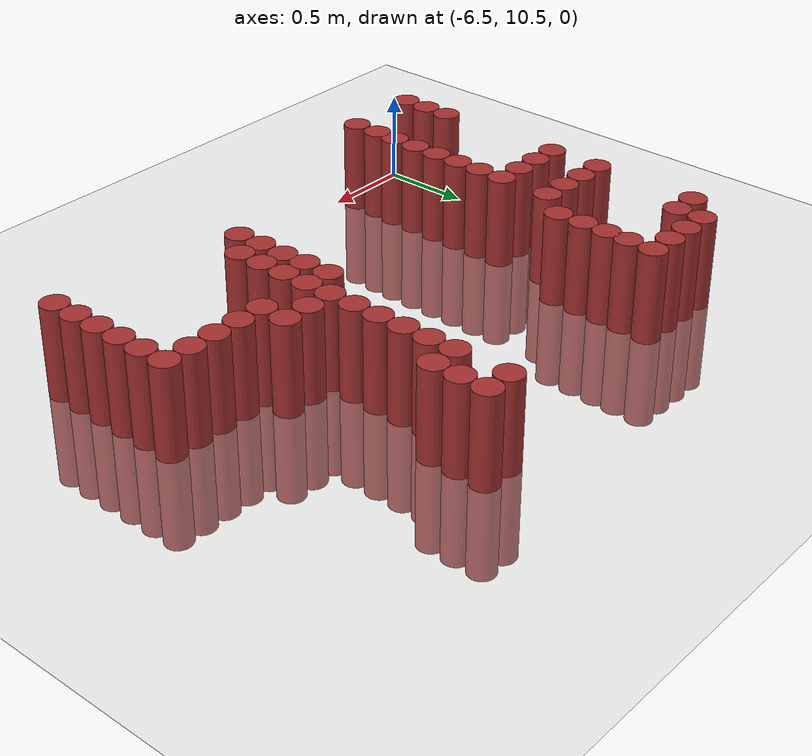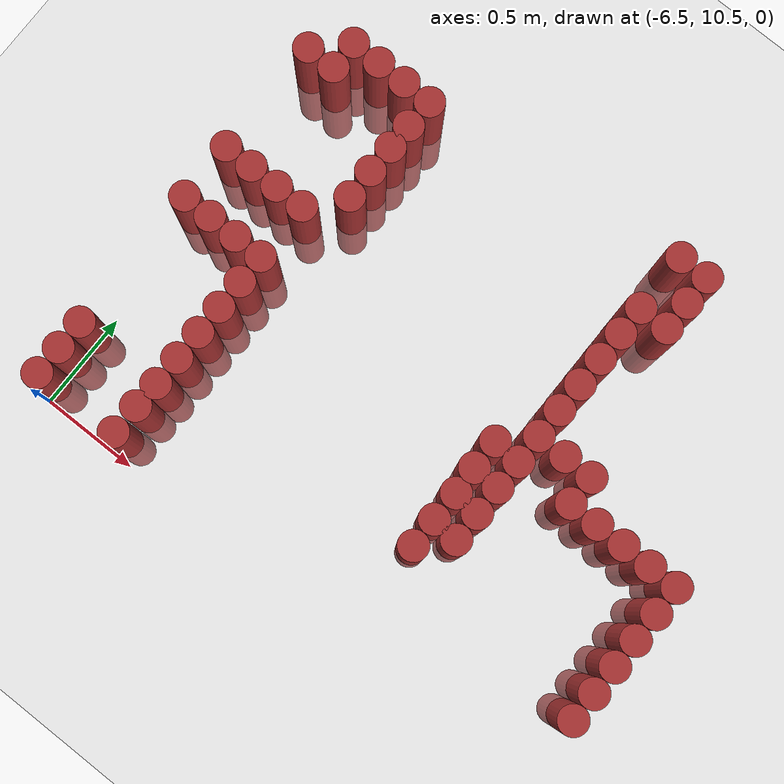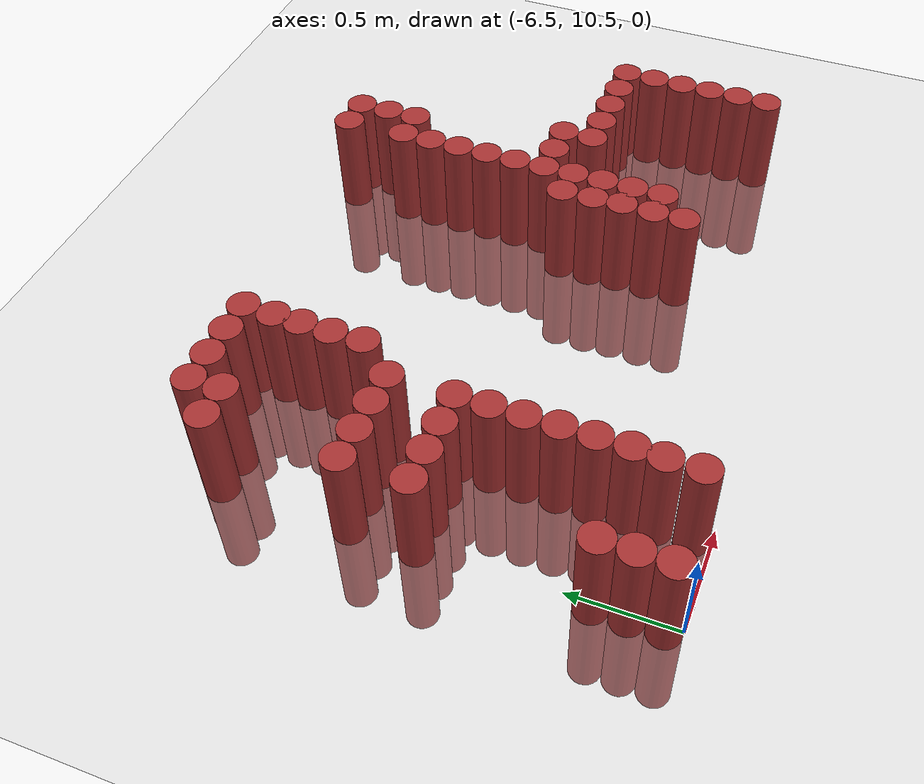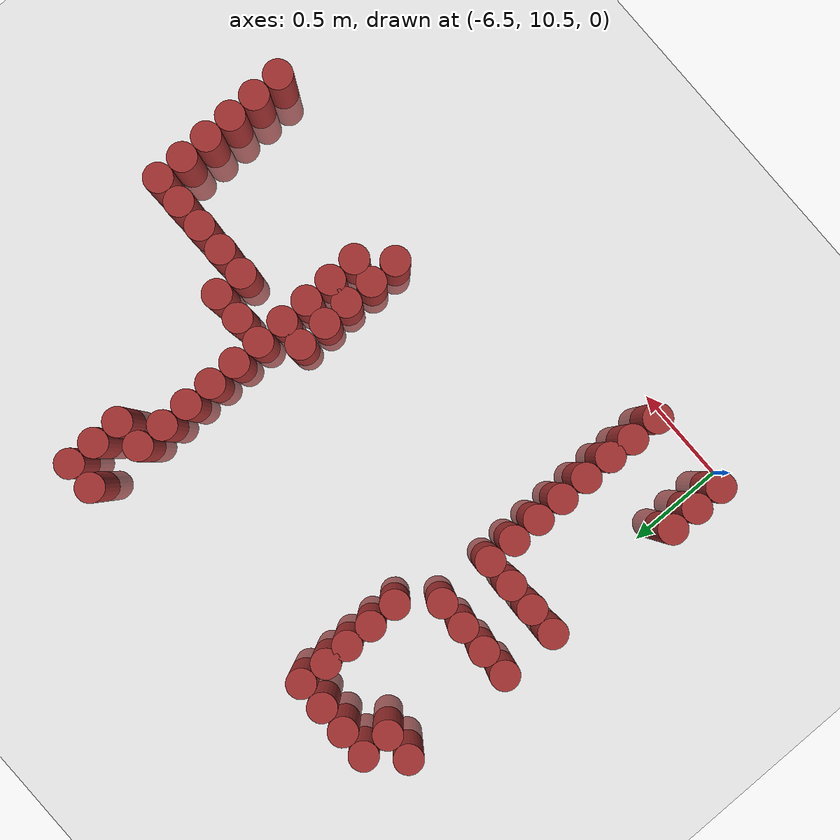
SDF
<sdf version="1.6">
 <world name="default">
  <model name="ground_plane">
   <static>1</static>
   <link name="link">
    <collision name="collision">
     <geometry><plane><normal>0 0 1</normal><size>100 100</size></plane></geometry>
     <surface><friction><ode><mu>100</mu><mu2>50</mu2></ode></friction></surface>
    </collision>
    <visual name="visual">
     <cast_shadows>0</cast_shadows>
     <geometry><plane><normal>0 0 1</normal><size>100 100</size></plane></geometry>
     <material>
      <script><uri>file://media/materials/scripts/gazebo.material</uri><name>Gazebo/Grey</name></script>
     </material>
    </visual>
   </link>
  </model>
  <model name="unit_cylinder_845">
   <static>1</static>
   <pose>-6.525 10.575 0 0 -0 0</pose>
   <link name="link">
    <inertial>
     <mass>1</mass>
     <inertia><ixx>0.145833</ixx><ixy>0</ixy><ixz>0</ixz><iyy>0.145833</iyy><iyz>0</iyz><izz>0.125</izz></inertia>
    </inertial>
    <collision name="collision">
     <geometry><cylinder><radius>0.075</radius><length>1</length></cylinder></geometry>
    </collision>
    <visual name="visual">
     <geometry><cylinder><radius>0.075</radius><length>1</length></cylinder></geometry>
     <material><ambient>0.648 0.192 0.192 1</ambient><diffuse>0.648 0.192 0.192 1</diffuse></material>
     <material>
      <script><name>Gazebo/Grey</name><uri>file://media/materials/scripts/gazebo.material</uri></script>
     </material>
    </visual>
   </link>
  </model>
  <model name="unit_cylinder_846">
   <static>1</static>
   <pose>-6.525 10.725 0 0 -0 0</pose>
   <link name="link">
    <inertial>
     <mass>1</mass>
     <inertia><ixx>0.145833</ixx><ixy>0</ixy><ixz>0</ixz><iyy>0.145833</iyy><iyz>0</iyz><izz>0.125</izz></inertia>
    </inertial>
    <collision name="collision">
     <geometry><cylinder><radius>0.075</radius><length>1</length></cylinder></geometry>
    </collision>
    <visual name="visual">
     <geometry><cylinder><radius>0.075</radius><length>1</length></cylinder></geometry>
     <material><ambient>0.648 0.192 0.192 1</ambient><diffuse>0.648 0.192 0.192 1</diffuse></material>
     <material>
      <script><name>Gazebo/Grey</name><uri>file://media/materials/scripts/gazebo.material</uri></script>
     </material>
    </visual>
   </link>
  </model>
  <model name="unit_cylinder_847">
   <static>1</static>
   <pose>-6.525 10.875 0 0 -0 0</pose>
   <link name="link">
    <inertial>
     <mass>1</mass>
     <inertia><ixx>0.145833</ixx><ixy>0</ixy><ixz>0</ixz><iyy>0.145833</iyy><iyz>0</iyz><izz>0.125</izz></inertia>
    </inertial>
    <collision name="collision">
     <geometry><cylinder><radius>0.075</radius><length>1</length></cylinder></geometry>
    </collision>
    <visual name="visual">
     <geometry><cylinder><radius>0.075</radius><length>1</length></cylinder></geometry>
     <material><ambient>0.648 0.192 0.192 1</ambient><diffuse>0.648 0.192 0.192 1</diffuse></material>
     <material>
      <script><name>Gazebo/Grey</name><uri>file://media/materials/scripts/gazebo.material</uri></script>
     </material>
    </visual>
   </link>
  </model>
  <model name="unit_cylinder_848">
   <static>1</static>
   <pose>-6.525 11.625 0 0 -0 0</pose>
   <link name="link">
    <inertial>
     <mass>1</mass>
     <inertia><ixx>0.145833</ixx><ixy>0</ixy><ixz>0</ixz><iyy>0.145833</iyy><iyz>0</iyz><izz>0.125</izz></inertia>
    </inertial>
    <collision name="collision">
     <geometry><cylinder><radius>0.075</radius><length>1</length></cylinder></geometry>
    </collision>
    <visual name="visual">
     <geometry><cylinder><radius>0.075</radius><length>1</length></cylinder></geometry>
     <material><ambient>0.648 0.192 0.192 1</ambient><diffuse>0.648 0.192 0.192 1</diffuse></material>
     <material>
      <script><name>Gazebo/Grey</name><uri>file://media/materials/scripts/gazebo.material</uri></script>
     </material>
    </visual>
   </link>
  </model>
  <model name="unit_cylinder_849">
   <static>1</static>
   <pose>-6.525 11.925 0 0 -0 0</pose>
   <link name="link">
    <inertial>
     <mass>1</mass>
     <inertia><ixx>0.145833</ixx><ixy>0</ixy><ixz>0</ixz><iyy>0.145833</iyy><iyz>0</iyz><izz>0.125</izz></inertia>
    </inertial>
    <collision name="collision">
     <geometry><cylinder><radius>0.075</radius><length>1</length></cylinder></geometry>
    </collision>
    <visual name="visual">
     <geometry><cylinder><radius>0.075</radius><length>1</length></cylinder></geometry>
     <material><ambient>0.648 0.192 0.192 1</ambient><diffuse>0.648 0.192 0.192 1</diffuse></material>
     <material>
      <script><name>Gazebo/Grey</name><uri>file://media/materials/scripts/gazebo.material</uri></script>
     </material>
    </visual>
   </link>
  </model>
  <model name="unit_cylinder_850">
   <static>1</static>
   <pose>-6.525 12.525 0 0 -0 0</pose>
   <link name="link">
    <inertial>
     <mass>1</mass>
     <inertia><ixx>0.145833</ixx><ixy>0</ixy><ixz>0</ixz><iyy>0.145833</iyy><iyz>0</iyz><izz>0.125</izz></inertia>
    </inertial>
    <collision name="collision">
     <geometry><cylinder><radius>0.075</radius><length>1</length></cylinder></geometry>
    </collision>
    <visual name="visual">
     <geometry><cylinder><radius>0.075</radius><length>1</length></cylinder></geometry>
     <material><ambient>0.648 0.192 0.192 1</ambient><diffuse>0.648 0.192 0.192 1</diffuse></material>
     <material>
      <script><name>Gazebo/Grey</name><uri>file://media/materials/scripts/gazebo.material</uri></script>
     </material>
    </visual>
   </link>
  </model>
  <model name="unit_cylinder_866">
   <static>1</static>
   <pose>-6.375 11.625 0 0 -0 0</pose>
   <link name="link">
    <inertial>
     <mass>1</mass>
     <inertia><ixx>0.145833</ixx><ixy>0</ixy><ixz>0</ixz><iyy>0.145833</iyy><iyz>0</iyz><izz>0.125</izz></inertia>
    </inertial>
    <collision name="collision">
     <geometry><cylinder><radius>0.075</radius><length>1</length></cylinder></geometry>
    </collision>
    <visual name="visual">
     <geometry><cylinder><radius>0.075</radius><length>1</length></cylinder></geometry>
     <material><ambient>0.648 0.192 0.192 1</ambient><diffuse>0.648 0.192 0.192 1</diffuse></material>
     <material>
      <script><name>Gazebo/Grey</name><uri>file://media/materials/scripts/gazebo.material</uri></script>
     </material>
    </visual>
   </link>
  </model>
  <model name="unit_cylinder_867">
   <static>1</static>
   <pose>-6.375 11.925 0 0 -0 0</pose>
   <link name="link">
    <inertial>
     <mass>1</mass>
     <inertia><ixx>0.145833</ixx><ixy>0</ixy><ixz>0</ixz><iyy>0.145833</iyy><iyz>0</iyz><izz>0.125</izz></inertia>
    </inertial>
    <collision name="collision">
     <geometry><cylinder><radius>0.075</radius><length>1</length></cylinder></geometry>
    </collision>
    <visual name="visual">
     <geometry><cylinder><radius>0.075</radius><length>1</length></cylinder></geometry>
     <material><ambient>0.648 0.192 0.192 1</ambient><diffuse>0.648 0.192 0.192 1</diffuse></material>
     <material>
      <script><name>Gazebo/Grey</name><uri>file://media/materials/scripts/gazebo.material</uri></script>
     </material>
    </visual>
   </link>
  </model>
  <model name="unit_cylinder_868">
   <static>1</static>
   <pose>-6.375 12.525 0 0 -0 0</pose>
   <link name="link">
    <inertial>
     <mass>1</mass>
     <inertia><ixx>0.145833</ixx><ixy>0</ixy><ixz>0</ixz><iyy>0.145833</iyy><iyz>0</iyz><izz>0.125</izz></inertia>
    </inertial>
    <collision name="collision">
     <geometry><cylinder><radius>0.075</radius><length>1</length></cylinder></geometry>
    </collision>
    <visual name="visual">
     <geometry><cylinder><radius>0.075</radius><length>1</length></cylinder></geometry>
     <material><ambient>0.648 0.192 0.192 1</ambient><diffuse>0.648 0.192 0.192 1</diffuse></material>
     <material>
      <script><name>Gazebo/Grey</name><uri>file://media/materials/scripts/gazebo.material</uri></script>
     </material>
    </visual>
   </link>
  </model>
  <model name="unit_cylinder_869">
   <static>1</static>
   <pose>-6.375 12.675 0 0 -0 0</pose>
   <link name="link">
    <inertial>
     <mass>1</mass>
     <inertia><ixx>0.145833</ixx><ixy>0</ixy><ixz>0</ixz><iyy>0.145833</iyy><iyz>0</iyz><izz>0.125</izz></inertia>
    </inertial>
    <collision name="collision">
     <geometry><cylinder><radius>0.075</radius><length>1</length></cylinder></geometry>
    </collision>
    <visual name="visual">
     <geometry><cylinder><radius>0.075</radius><length>1</length></cylinder></geometry>
     <material><ambient>0.648 0.192 0.192 1</ambient><diffuse>0.648 0.192 0.192 1</diffuse></material>
     <material>
      <script><name>Gazebo/Grey</name><uri>file://media/materials/scripts/gazebo.material</uri></script>
     </material>
    </visual>
   </link>
  </model>
  <model name="unit_cylinder_882">
   <static>1</static>
   <pose>-6.225 11.625 0 0 -0 0</pose>
   <link name="link">
    <inertial>
     <mass>1</mass>
     <inertia><ixx>0.145833</ixx><ixy>0</ixy><ixz>0</ixz><iyy>0.145833</iyy><iyz>0</iyz><izz>0.125</izz></inertia>
    </inertial>
    <collision name="collision">
     <geometry><cylinder><radius>0.075</radius><length>1</length></cylinder></geometry>
    </collision>
    <visual name="visual">
     <geometry><cylinder><radius>0.075</radius><length>1</length></cylinder></geometry>
     <material><ambient>0.648 0.192 0.192 1</ambient><diffuse>0.648 0.192 0.192 1</diffuse></material>
     <material>
      <script><name>Gazebo/Grey</name><uri>file://media/materials/scripts/gazebo.material</uri></script>
     </material>
    </visual>
   </link>
  </model>
  <model name="unit_cylinder_883">
   <static>1</static>
   <pose>-6.225 11.925 0 0 -0 0</pose>
   <link name="link">
    <inertial>
     <mass>1</mass>
     <inertia><ixx>0.145833</ixx><ixy>0</ixy><ixz>0</ixz><iyy>0.145833</iyy><iyz>0</iyz><izz>0.125</izz></inertia>
    </inertial>
    <collision name="collision">
     <geometry><cylinder><radius>0.075</radius><length>1</length></cylinder></geometry>
    </collision>
    <visual name="visual">
     <geometry><cylinder><radius>0.075</radius><length>1</length></cylinder></geometry>
     <material><ambient>0.648 0.192 0.192 1</ambient><diffuse>0.648 0.192 0.192 1</diffuse></material>
     <material>
      <script><name>Gazebo/Grey</name><uri>file://media/materials/scripts/gazebo.material</uri></script>
     </material>
    </visual>
   </link>
  </model>
  <model name="unit_cylinder_884">
   <static>1</static>
   <pose>-6.225 12.675 0 0 -0 0</pose>
   <link name="link">
    <inertial>
     <mass>1</mass>
     <inertia><ixx>0.145833</ixx><ixy>0</ixy><ixz>0</ixz><iyy>0.145833</iyy><iyz>0</iyz><izz>0.125</izz></inertia>
    </inertial>
    <collision name="collision">
     <geometry><cylinder><radius>0.075</radius><length>1</length></cylinder></geometry>
    </collision>
    <visual name="visual">
     <geometry><cylinder><radius>0.075</radius><length>1</length></cylinder></geometry>
     <material><ambient>0.648 0.192 0.192 1</ambient><diffuse>0.648 0.192 0.192 1</diffuse></material>
     <material>
      <script><name>Gazebo/Grey</name><uri>file://media/materials/scripts/gazebo.material</uri></script>
     </material>
    </visual>
   </link>
  </model>
  <model name="unit_cylinder_897">
   <static>1</static>
   <pose>-6.075 10.875 0 0 -0 0</pose>
   <link name="link">
    <inertial>
     <mass>1</mass>
     <inertia><ixx>0.145833</ixx><ixy>0</ixy><ixz>0</ixz><iyy>0.145833</iyy><iyz>0</iyz><izz>0.125</izz></inertia>
    </inertial>
    <collision name="collision">
     <geometry><cylinder><radius>0.075</radius><length>1</length></cylinder></geometry>
    </collision>
    <visual name="visual">
     <geometry><cylinder><radius>0.075</radius><length>1</length></cylinder></geometry>
     <material><ambient>0.648 0.192 0.192 1</ambient><diffuse>0.648 0.192 0.192 1</diffuse></material>
     <material>
      <script><name>Gazebo/Grey</name><uri>file://media/materials/scripts/gazebo.material</uri></script>
     </material>
    </visual>
   </link>
  </model>
  <model name="unit_cylinder_898">
   <static>1</static>
   <pose>-6.075 11.025 0 0 -0 0</pose>
   <link name="link">
    <inertial>
     <mass>1</mass>
     <inertia><ixx>0.145833</ixx><ixy>0</ixy><ixz>0</ixz><iyy>0.145833</iyy><iyz>0</iyz><izz>0.125</izz></inertia>
    </inertial>
    <collision name="collision">
     <geometry><cylinder><radius>0.075</radius><length>1</length></cylinder></geometry>
    </collision>
    <visual name="visual">
     <geometry><cylinder><radius>0.075</radius><length>1</length></cylinder></geometry>
     <material><ambient>0.648 0.192 0.192 1</ambient><diffuse>0.648 0.192 0.192 1</diffuse></material>
     <material>
      <script><name>Gazebo/Grey</name><uri>file://media/materials/scripts/gazebo.material</uri></script>
     </material>
    </visual>
   </link>
  </model>
  <model name="unit_cylinder_899">
   <static>1</static>
   <pose>-6.075 11.175 0 0 -0 0</pose>
   <link name="link">
    <inertial>
     <mass>1</mass>
     <inertia><ixx>0.145833</ixx><ixy>0</ixy><ixz>0</ixz><iyy>0.145833</iyy><iyz>0</iyz><izz>0.125</izz></inertia>
    </inertial>
    <collision name="collision">
     <geometry><cylinder><radius>0.075</radius><length>1</length></cylinder></geometry>
    </collision>
    <visual name="visual">
     <geometry><cylinder><radius>0.075</radius><length>1</length></cylinder></geometry>
     <material><ambient>0.648 0.192 0.192 1</ambient><diffuse>0.648 0.192 0.192 1</diffuse></material>
     <material>
      <script><name>Gazebo/Grey</name><uri>file://media/materials/scripts/gazebo.material</uri></script>
     </material>
    </visual>
   </link>
  </model>
  <model name="unit_cylinder_900">
   <static>1</static>
   <pose>-6.075 11.325 0 0 -0 0</pose>
   <link name="link">
    <inertial>
     <mass>1</mass>
     <inertia><ixx>0.145833</ixx><ixy>0</ixy><ixz>0</ixz><iyy>0.145833</iyy><iyz>0</iyz><izz>0.125</izz></inertia>
    </inertial>
    <collision name="collision">
     <geometry><cylinder><radius>0.075</radius><length>1</length></cylinder></geometry>
    </collision>
    <visual name="visual">
     <geometry><cylinder><radius>0.075</radius><length>1</length></cylinder></geometry>
     <material><ambient>0.648 0.192 0.192 1</ambient><diffuse>0.648 0.192 0.192 1</diffuse></material>
     <material>
      <script><name>Gazebo/Grey</name><uri>file://media/materials/scripts/gazebo.material</uri></script>
     </material>
    </visual>
   </link>
  </model>
  <model name="unit_cylinder_901">
   <static>1</static>
   <pose>-6.075 11.475 0 0 -0 0</pose>
   <link name="link">
    <inertial>
     <mass>1</mass>
     <inertia><ixx>0.145833</ixx><ixy>0</ixy><ixz>0</ixz><iyy>0.145833</iyy><iyz>0</iyz><izz>0.125</izz></inertia>
    </inertial>
    <collision name="collision">
     <geometry><cylinder><radius>0.075</radius><length>1</length></cylinder></geometry>
    </collision>
    <visual name="visual">
     <geometry><cylinder><radius>0.075</radius><length>1</length></cylinder></geometry>
     <material><ambient>0.648 0.192 0.192 1</ambient><diffuse>0.648 0.192 0.192 1</diffuse></material>
     <material>
      <script><name>Gazebo/Grey</name><uri>file://media/materials/scripts/gazebo.material</uri></script>
     </material>
    </visual>
   </link>
  </model>
  <model name="unit_cylinder_902">
   <static>1</static>
   <pose>-6.075 11.625 0 0 -0 0</pose>
   <link name="link">
    <inertial>
     <mass>1</mass>
     <inertia><ixx>0.145833</ixx><ixy>0</ixy><ixz>0</ixz><iyy>0.145833</iyy><iyz>0</iyz><izz>0.125</izz></inertia>
    </inertial>
    <collision name="collision">
     <geometry><cylinder><radius>0.075</radius><length>1</length></cylinder></geometry>
    </collision>
    <visual name="visual">
     <geometry><cylinder><radius>0.075</radius><length>1</length></cylinder></geometry>
     <material><ambient>0.648 0.192 0.192 1</ambient><diffuse>0.648 0.192 0.192 1</diffuse></material>
     <material>
      <script><name>Gazebo/Grey</name><uri>file://media/materials/scripts/gazebo.material</uri></script>
     </material>
    </visual>
   </link>
  </model>
  <model name="unit_cylinder_903">
   <static>1</static>
   <pose>-6.075 11.925 0 0 -0 0</pose>
   <link name="link">
    <inertial>
     <mass>1</mass>
     <inertia><ixx>0.145833</ixx><ixy>0</ixy><ixz>0</ixz><iyy>0.145833</iyy><iyz>0</iyz><izz>0.125</izz></inertia>
    </inertial>
    <collision name="collision">
     <geometry><cylinder><radius>0.075</radius><length>1</length></cylinder></geometry>
    </collision>
    <visual name="visual">
     <geometry><cylinder><radius>0.075</radius><length>1</length></cylinder></geometry>
     <material><ambient>0.648 0.192 0.192 1</ambient><diffuse>0.648 0.192 0.192 1</diffuse></material>
     <material>
      <script><name>Gazebo/Grey</name><uri>file://media/materials/scripts/gazebo.material</uri></script>
     </material>
    </visual>
   </link>
  </model>
  <model name="unit_cylinder_904">
   <static>1</static>
   <pose>-6.075 12.675 0 0 -0 0</pose>
   <link name="link">
    <inertial>
     <mass>1</mass>
     <inertia><ixx>0.145833</ixx><ixy>0</ixy><ixz>0</ixz><iyy>0.145833</iyy><iyz>0</iyz><izz>0.125</izz></inertia>
    </inertial>
    <collision name="collision">
     <geometry><cylinder><radius>0.075</radius><length>1</length></cylinder></geometry>
    </collision>
    <visual name="visual">
     <geometry><cylinder><radius>0.075</radius><length>1</length></cylinder></geometry>
     <material><ambient>0.648 0.192 0.192 1</ambient><diffuse>0.648 0.192 0.192 1</diffuse></material>
     <material>
      <script><name>Gazebo/Grey</name><uri>file://media/materials/scripts/gazebo.material</uri></script>
     </material>
    </visual>
   </link>
  </model>
  <model name="unit_cylinder_923">
   <static>1</static>
   <pose>-5.925 12.675 0 0 -0 0</pose>
   <link name="link">
    <inertial>
     <mass>1</mass>
     <inertia><ixx>0.145833</ixx><ixy>0</ixy><ixz>0</ixz><iyy>0.145833</iyy><iyz>0</iyz><izz>0.125</izz></inertia>
    </inertial>
    <collision name="collision">
     <geometry><cylinder><radius>0.075</radius><length>1</length></cylinder></geometry>
    </collision>
    <visual name="visual">
     <geometry><cylinder><radius>0.075</radius><length>1</length></cylinder></geometry>
     <material><ambient>0.648 0.192 0.192 1</ambient><diffuse>0.648 0.192 0.192 1</diffuse></material>
     <material>
      <script><name>Gazebo/Grey</name><uri>file://media/materials/scripts/gazebo.material</uri></script>
     </material>
    </visual>
   </link>
  </model>
  <model name="unit_cylinder_1079">
   <static>1</static>
   <pose>-4.575 11.175 0 0 -0 0</pose>
   <link name="link">
    <inertial>
     <mass>1</mass>
     <inertia><ixx>0.145833</ixx><ixy>0</ixy><ixz>0</ixz><iyy>0.145833</iyy><iyz>0</iyz><izz>0.125</izz></inertia>
    </inertial>
    <collision name="collision">
     <geometry><cylinder><radius>0.075</radius><length>1</length></cylinder></geometry>
    </collision>
    <visual name="visual">
     <geometry><cylinder><radius>0.075</radius><length>1</length></cylinder></geometry>
     <material><ambient>0.648 0.192 0.192 1</ambient><diffuse>0.648 0.192 0.192 1</diffuse></material>
     <material>
      <script><name>Gazebo/Grey</name><uri>file://media/materials/scripts/gazebo.material</uri></script>
     </material>
    </visual>
   </link>
  </model>
  <model name="unit_cylinder_1080">
   <static>1</static>
   <pose>-4.575 11.325 0 0 -0 0</pose>
   <link name="link">
    <inertial>
     <mass>1</mass>
     <inertia><ixx>0.145833</ixx><ixy>0</ixy><ixz>0</ixz><iyy>0.145833</iyy><iyz>0</iyz><izz>0.125</izz></inertia>
    </inertial>
    <collision name="collision">
     <geometry><cylinder><radius>0.075</radius><length>1</length></cylinder></geometry>
    </collision>
    <visual name="visual">
     <geometry><cylinder><radius>0.075</radius><length>1</length></cylinder></geometry>
     <material><ambient>0.648 0.192 0.192 1</ambient><diffuse>0.648 0.192 0.192 1</diffuse></material>
     <material>
      <script><name>Gazebo/Grey</name><uri>file://media/materials/scripts/gazebo.material</uri></script>
     </material>
    </visual>
   </link>
  </model>
  <model name="unit_cylinder_1081">
   <static>1</static>
   <pose>-4.575 11.475 0 0 -0 0</pose>
   <link name="link">
    <inertial>
     <mass>1</mass>
     <inertia><ixx>0.145833</ixx><ixy>0</ixy><ixz>0</ixz><iyy>0.145833</iyy><iyz>0</iyz><izz>0.125</izz></inertia>
    </inertial>
    <collision name="collision">
     <geometry><cylinder><radius>0.075</radius><length>1</length></cylinder></geometry>
    </collision>
    <visual name="visual">
     <geometry><cylinder><radius>0.075</radius><length>1</length></cylinder></geometry>
     <material><ambient>0.648 0.192 0.192 1</ambient><diffuse>0.648 0.192 0.192 1</diffuse></material>
     <material>
      <script><name>Gazebo/Grey</name><uri>file://media/materials/scripts/gazebo.material</uri></script>
     </material>
    </visual>
   </link>
  </model>
  <model name="unit_cylinder_1082">
   <static>1</static>
   <pose>-4.575 11.625 0 0 -0 0</pose>
   <link name="link">
    <inertial>
     <mass>1</mass>
     <inertia><ixx>0.145833</ixx><ixy>0</ixy><ixz>0</ixz><iyy>0.145833</iyy><iyz>0</iyz><izz>0.125</izz></inertia>
    </inertial>
    <collision name="collision">
     <geometry><cylinder><radius>0.075</radius><length>1</length></cylinder></geometry>
    </collision>
    <visual name="visual">
     <geometry><cylinder><radius>0.075</radius><length>1</length></cylinder></geometry>
     <material><ambient>0.648 0.192 0.192 1</ambient><diffuse>0.648 0.192 0.192 1</diffuse></material>
     <material>
      <script><name>Gazebo/Grey</name><uri>file://media/materials/scripts/gazebo.material</uri></script>
     </material>
    </visual>
   </link>
  </model>
  <model name="unit_cylinder_1083">
   <static>1</static>
   <pose>-4.575 11.775 0 0 -0 0</pose>
   <link name="link">
    <inertial>
     <mass>1</mass>
     <inertia><ixx>0.145833</ixx><ixy>0</ixy><ixz>0</ixz><iyy>0.145833</iyy><iyz>0</iyz><izz>0.125</izz></inertia>
    </inertial>
    <collision name="collision">
     <geometry><cylinder><radius>0.075</radius><length>1</length></cylinder></geometry>
    </collision>
    <visual name="visual">
     <geometry><cylinder><radius>0.075</radius><length>1</length></cylinder></geometry>
     <material><ambient>0.648 0.192 0.192 1</ambient><diffuse>0.648 0.192 0.192 1</diffuse></material>
     <material>
      <script><name>Gazebo/Grey</name><uri>file://media/materials/scripts/gazebo.material</uri></script>
     </material>
    </visual>
   </link>
  </model>
  <model name="unit_cylinder_1084">
   <static>1</static>
   <pose>-4.575 11.925 0 0 -0 0</pose>
   <link name="link">
    <inertial>
     <mass>1</mass>
     <inertia><ixx>0.145833</ixx><ixy>0</ixy><ixz>0</ixz><iyy>0.145833</iyy><iyz>0</iyz><izz>0.125</izz></inertia>
    </inertial>
    <collision name="collision">
     <geometry><cylinder><radius>0.075</radius><length>1</length></cylinder></geometry>
    </collision>
    <visual name="visual">
     <geometry><cylinder><radius>0.075</radius><length>1</length></cylinder></geometry>
     <material><ambient>0.648 0.192 0.192 1</ambient><diffuse>0.648 0.192 0.192 1</diffuse></material>
     <material>
      <script><name>Gazebo/Grey</name><uri>file://media/materials/scripts/gazebo.material</uri></script>
     </material>
    </visual>
   </link>
  </model>
  <model name="unit_cylinder_1085">
   <static>1</static>
   <pose>-4.575 12.075 0 0 -0 0</pose>
   <link name="link">
    <inertial>
     <mass>1</mass>
     <inertia><ixx>0.145833</ixx><ixy>0</ixy><ixz>0</ixz><iyy>0.145833</iyy><iyz>0</iyz><izz>0.125</izz></inertia>
    </inertial>
    <collision name="collision">
     <geometry><cylinder><radius>0.075</radius><length>1</length></cylinder></geometry>
    </collision>
    <visual name="visual">
     <geometry><cylinder><radius>0.075</radius><length>1</length></cylinder></geometry>
     <material><ambient>0.648 0.192 0.192 1</ambient><diffuse>0.648 0.192 0.192 1</diffuse></material>
     <material>
      <script><name>Gazebo/Grey</name><uri>file://media/materials/scripts/gazebo.material</uri></script>
     </material>
    </visual>
   </link>
  </model>
  <model name="unit_cylinder_1086">
   <static>1</static>
   <pose>-4.575 12.225 0 0 -0 0</pose>
   <link name="link">
    <inertial>
     <mass>1</mass>
     <inertia><ixx>0.145833</ixx><ixy>0</ixy><ixz>0</ixz><iyy>0.145833</iyy><iyz>0</iyz><izz>0.125</izz></inertia>
    </inertial>
    <collision name="collision">
     <geometry><cylinder><radius>0.075</radius><length>1</length></cylinder></geometry>
    </collision>
    <visual name="visual">
     <geometry><cylinder><radius>0.075</radius><length>1</length></cylinder></geometry>
     <material><ambient>0.648 0.192 0.192 1</ambient><diffuse>0.648 0.192 0.192 1</diffuse></material>
     <material>
      <script><name>Gazebo/Grey</name><uri>file://media/materials/scripts/gazebo.material</uri></script>
     </material>
    </visual>
   </link>
  </model>
  <model name="unit_cylinder_1087">
   <static>1</static>
   <pose>-4.575 12.375 0 0 -0 0</pose>
   <link name="link">
    <inertial>
     <mass>1</mass>
     <inertia><ixx>0.145833</ixx><ixy>0</ixy><ixz>0</ixz><iyy>0.145833</iyy><iyz>0</iyz><izz>0.125</izz></inertia>
    </inertial>
    <collision name="collision">
     <geometry><cylinder><radius>0.075</radius><length>1</length></cylinder></geometry>
    </collision>
    <visual name="visual">
     <geometry><cylinder><radius>0.075</radius><length>1</length></cylinder></geometry>
     <material><ambient>0.648 0.192 0.192 1</ambient><diffuse>0.648 0.192 0.192 1</diffuse></material>
     <material>
      <script><name>Gazebo/Grey</name><uri>file://media/materials/scripts/gazebo.material</uri></script>
     </material>
    </visual>
   </link>
  </model>
  <model name="unit_cylinder_1088">
   <static>1</static>
   <pose>-4.575 12.525 0 0 -0 0</pose>
   <link name="link">
    <inertial>
     <mass>1</mass>
     <inertia><ixx>0.145833</ixx><ixy>0</ixy><ixz>0</ixz><iyy>0.145833</iyy><iyz>0</iyz><izz>0.125</izz></inertia>
    </inertial>
    <collision name="collision">
     <geometry><cylinder><radius>0.075</radius><length>1</length></cylinder></geometry>
    </collision>
    <visual name="visual">
     <geometry><cylinder><radius>0.075</radius><length>1</length></cylinder></geometry>
     <material><ambient>0.648 0.192 0.192 1</ambient><diffuse>0.648 0.192 0.192 1</diffuse></material>
     <material>
      <script><name>Gazebo/Grey</name><uri>file://media/materials/scripts/gazebo.material</uri></script>
     </material>
    </visual>
   </link>
  </model>
  <model name="unit_cylinder_1089">
   <static>1</static>
   <pose>-4.575 12.825 0 0 -0 0</pose>
   <link name="link">
    <inertial>
     <mass>1</mass>
     <inertia><ixx>0.145833</ixx><ixy>0</ixy><ixz>0</ixz><iyy>0.145833</iyy><iyz>0</iyz><izz>0.125</izz></inertia>
    </inertial>
    <collision name="collision">
     <geometry><cylinder><radius>0.075</radius><length>1</length></cylinder></geometry>
    </collision>
    <visual name="visual">
     <geometry><cylinder><radius>0.075</radius><length>1</length></cylinder></geometry>
     <material><ambient>0.648 0.192 0.192 1</ambient><diffuse>0.648 0.192 0.192 1</diffuse></material>
     <material>
      <script><name>Gazebo/Grey</name><uri>file://media/materials/scripts/gazebo.material</uri></script>
     </material>
    </visual>
   </link>
  </model>
  <model name="unit_cylinder_1103">
   <static>1</static>
   <pose>-4.425 11.775 0 0 -0 0</pose>
   <link name="link">
    <inertial>
     <mass>1</mass>
     <inertia><ixx>0.145833</ixx><ixy>0</ixy><ixz>0</ixz><iyy>0.145833</iyy><iyz>0</iyz><izz>0.125</izz></inertia>
    </inertial>
    <collision name="collision">
     <geometry><cylinder><radius>0.075</radius><length>1</length></cylinder></geometry>
    </collision>
    <visual name="visual">
     <geometry><cylinder><radius>0.075</radius><length>1</length></cylinder></geometry>
     <material><ambient>0.648 0.192 0.192 1</ambient><diffuse>0.648 0.192 0.192 1</diffuse></material>
     <material>
      <script><name>Gazebo/Grey</name><uri>file://media/materials/scripts/gazebo.material</uri></script>
     </material>
    </visual>
   </link>
  </model>
  <model name="unit_cylinder_1104">
   <static>1</static>
   <pose>-4.425 12.525 0 0 -0 0</pose>
   <link name="link">
    <inertial>
     <mass>1</mass>
     <inertia><ixx>0.145833</ixx><ixy>0</ixy><ixz>0</ixz><iyy>0.145833</iyy><iyz>0</iyz><izz>0.125</izz></inertia>
    </inertial>
    <collision name="collision">
     <geometry><cylinder><radius>0.075</radius><length>1</length></cylinder></geometry>
    </collision>
    <visual name="visual">
     <geometry><cylinder><radius>0.075</radius><length>1</length></cylinder></geometry>
     <material><ambient>0.648 0.192 0.192 1</ambient><diffuse>0.648 0.192 0.192 1</diffuse></material>
     <material>
      <script><name>Gazebo/Grey</name><uri>file://media/materials/scripts/gazebo.material</uri></script>
     </material>
    </visual>
   </link>
  </model>
  <model name="unit_cylinder_1105">
   <static>1</static>
   <pose>-4.425 12.675 0 0 -0 0</pose>
   <link name="link">
    <inertial>
     <mass>1</mass>
     <inertia><ixx>0.145833</ixx><ixy>0</ixy><ixz>0</ixz><iyy>0.145833</iyy><iyz>0</iyz><izz>0.125</izz></inertia>
    </inertial>
    <collision name="collision">
     <geometry><cylinder><radius>0.075</radius><length>1</length></cylinder></geometry>
    </collision>
    <visual name="visual">
     <geometry><cylinder><radius>0.075</radius><length>1</length></cylinder></geometry>
     <material><ambient>0.648 0.192 0.192 1</ambient><diffuse>0.648 0.192 0.192 1</diffuse></material>
     <material>
      <script><name>Gazebo/Grey</name><uri>file://media/materials/scripts/gazebo.material</uri></script>
     </material>
    </visual>
   </link>
  </model>
  <model name="unit_cylinder_1106">
   <static>1</static>
   <pose>-4.425 12.825 0 0 -0 0</pose>
   <link name="link">
    <inertial>
     <mass>1</mass>
     <inertia><ixx>0.145833</ixx><ixy>0</ixy><ixz>0</ixz><iyy>0.145833</iyy><iyz>0</iyz><izz>0.125</izz></inertia>
    </inertial>
    <collision name="collision">
     <geometry><cylinder><radius>0.075</radius><length>1</length></cylinder></geometry>
    </collision>
    <visual name="visual">
     <geometry><cylinder><radius>0.075</radius><length>1</length></cylinder></geometry>
     <material><ambient>0.648 0.192 0.192 1</ambient><diffuse>0.648 0.192 0.192 1</diffuse></material>
     <material>
      <script><name>Gazebo/Grey</name><uri>file://media/materials/scripts/gazebo.material</uri></script>
     </material>
    </visual>
   </link>
  </model>
  <model name="unit_cylinder_1120">
   <static>1</static>
   <pose>-4.275 11.625 0 0 -0 0</pose>
   <link name="link">
    <inertial>
     <mass>1</mass>
     <inertia><ixx>0.145833</ixx><ixy>0</ixy><ixz>0</ixz><iyy>0.145833</iyy><iyz>0</iyz><izz>0.125</izz></inertia>
    </inertial>
    <collision name="collision">
     <geometry><cylinder><radius>0.075</radius><length>1</length></cylinder></geometry>
    </collision>
    <visual name="visual">
     <geometry><cylinder><radius>0.075</radius><length>1</length></cylinder></geometry>
     <material><ambient>0.648 0.192 0.192 1</ambient><diffuse>0.648 0.192 0.192 1</diffuse></material>
     <material>
      <script><name>Gazebo/Grey</name><uri>file://media/materials/scripts/gazebo.material</uri></script>
     </material>
    </visual>
   </link>
  </model>
  <model name="unit_cylinder_1121">
   <static>1</static>
   <pose>-4.275 11.775 0 0 -0 0</pose>
   <link name="link">
    <inertial>
     <mass>1</mass>
     <inertia><ixx>0.145833</ixx><ixy>0</ixy><ixz>0</ixz><iyy>0.145833</iyy><iyz>0</iyz><izz>0.125</izz></inertia>
    </inertial>
    <collision name="collision">
     <geometry><cylinder><radius>0.075</radius><length>1</length></cylinder></geometry>
    </collision>
    <visual name="visual">
     <geometry><cylinder><radius>0.075</radius><length>1</length></cylinder></geometry>
     <material><ambient>0.648 0.192 0.192 1</ambient><diffuse>0.648 0.192 0.192 1</diffuse></material>
     <material>
      <script><name>Gazebo/Grey</name><uri>file://media/materials/scripts/gazebo.material</uri></script>
     </material>
    </visual>
   </link>
  </model>
  <model name="unit_cylinder_1132">
   <static>1</static>
   <pose>-4.125 11.625 0 0 -0 0</pose>
   <link name="link">
    <inertial>
     <mass>1</mass>
     <inertia><ixx>0.145833</ixx><ixy>0</ixy><ixz>0</ixz><iyy>0.145833</iyy><iyz>0</iyz><izz>0.125</izz></inertia>
    </inertial>
    <collision name="collision">
     <geometry><cylinder><radius>0.075</radius><length>1</length></cylinder></geometry>
    </collision>
    <visual name="visual">
     <geometry><cylinder><radius>0.075</radius><length>1</length></cylinder></geometry>
     <material><ambient>0.648 0.192 0.192 1</ambient><diffuse>0.648 0.192 0.192 1</diffuse></material>
     <material>
      <script><name>Gazebo/Grey</name><uri>file://media/materials/scripts/gazebo.material</uri></script>
     </material>
    </visual>
   </link>
  </model>
  <model name="unit_cylinder_1142">
   <static>1</static>
   <pose>-3.975 11.625 0 0 -0 0</pose>
   <link name="link">
    <inertial>
     <mass>1</mass>
     <inertia><ixx>0.145833</ixx><ixy>0</ixy><ixz>0</ixz><iyy>0.145833</iyy><iyz>0</iyz><izz>0.125</izz></inertia>
    </inertial>
    <collision name="collision">
     <geometry><cylinder><radius>0.075</radius><length>1</length></cylinder></geometry>
    </collision>
    <visual name="visual">
     <geometry><cylinder><radius>0.075</radius><length>1</length></cylinder></geometry>
     <material><ambient>0.648 0.192 0.192 1</ambient><diffuse>0.648 0.192 0.192 1</diffuse></material>
     <material>
      <script><name>Gazebo/Grey</name><uri>file://media/materials/scripts/gazebo.material</uri></script>
     </material>
    </visual>
   </link>
  </model>
  <model name="unit_cylinder_1150">
   <static>1</static>
   <pose>-3.825 11.625 0 0 -0 0</pose>
   <link name="link">
    <inertial>
     <mass>1</mass>
     <inertia><ixx>0.145833</ixx><ixy>0</ixy><ixz>0</ixz><iyy>0.145833</iyy><iyz>0</iyz><izz>0.125</izz></inertia>
    </inertial>
    <collision name="collision">
     <geometry><cylinder><radius>0.075</radius><length>1</length></cylinder></geometry>
    </collision>
    <visual name="visual">
     <geometry><cylinder><radius>0.075</radius><length>1</length></cylinder></geometry>
     <material><ambient>0.648 0.192 0.192 1</ambient><diffuse>0.648 0.192 0.192 1</diffuse></material>
     <material>
      <script><name>Gazebo/Grey</name><uri>file://media/materials/scripts/gazebo.material</uri></script>
     </material>
    </visual>
   </link>
  </model>
  <model name="unit_cylinder_1164">
   <static>1</static>
   <pose>-3.675 10.875 0 0 -0 0</pose>
   <link name="link">
    <inertial>
     <mass>1</mass>
     <inertia><ixx>0.145833</ixx><ixy>0</ixy><ixz>0</ixz><iyy>0.145833</iyy><iyz>0</iyz><izz>0.125</izz></inertia>
    </inertial>
    <collision name="collision">
     <geometry><cylinder><radius>0.075</radius><length>1</length></cylinder></geometry>
    </collision>
    <visual name="visual">
     <geometry><cylinder><radius>0.075</radius><length>1</length></cylinder></geometry>
     <material><ambient>0.648 0.192 0.192 1</ambient><diffuse>0.648 0.192 0.192 1</diffuse></material>
     <material>
      <script><name>Gazebo/Grey</name><uri>file://media/materials/scripts/gazebo.material</uri></script>
     </material>
    </visual>
   </link>
  </model>
  <model name="unit_cylinder_1165">
   <static>1</static>
   <pose>-3.675 11.025 0 0 -0 0</pose>
   <link name="link">
    <inertial>
     <mass>1</mass>
     <inertia><ixx>0.145833</ixx><ixy>0</ixy><ixz>0</ixz><iyy>0.145833</iyy><iyz>0</iyz><izz>0.125</izz></inertia>
    </inertial>
    <collision name="collision">
     <geometry><cylinder><radius>0.075</radius><length>1</length></cylinder></geometry>
    </collision>
    <visual name="visual">
     <geometry><cylinder><radius>0.075</radius><length>1</length></cylinder></geometry>
     <material><ambient>0.648 0.192 0.192 1</ambient><diffuse>0.648 0.192 0.192 1</diffuse></material>
     <material>
      <script><name>Gazebo/Grey</name><uri>file://media/materials/scripts/gazebo.material</uri></script>
     </material>
    </visual>
   </link>
  </model>
  <model name="unit_cylinder_1166">
   <static>1</static>
   <pose>-3.675 11.175 0 0 -0 0</pose>
   <link name="link">
    <inertial>
     <mass>1</mass>
     <inertia><ixx>0.145833</ixx><ixy>0</ixy><ixz>0</ixz><iyy>0.145833</iyy><iyz>0</iyz><izz>0.125</izz></inertia>
    </inertial>
    <collision name="collision">
     <geometry><cylinder><radius>0.075</radius><length>1</length></cylinder></geometry>
    </collision>
    <visual name="visual">
     <geometry><cylinder><radius>0.075</radius><length>1</length></cylinder></geometry>
     <material><ambient>0.648 0.192 0.192 1</ambient><diffuse>0.648 0.192 0.192 1</diffuse></material>
     <material>
      <script><name>Gazebo/Grey</name><uri>file://media/materials/scripts/gazebo.material</uri></script>
     </material>
    </visual>
   </link>
  </model>
  <model name="unit_cylinder_1167">
   <static>1</static>
   <pose>-3.675 11.325 0 0 -0 0</pose>
   <link name="link">
    <inertial>
     <mass>1</mass>
     <inertia><ixx>0.145833</ixx><ixy>0</ixy><ixz>0</ixz><iyy>0.145833</iyy><iyz>0</iyz><izz>0.125</izz></inertia>
    </inertial>
    <collision name="collision">
     <geometry><cylinder><radius>0.075</radius><length>1</length></cylinder></geometry>
    </collision>
    <visual name="visual">
     <geometry><cylinder><radius>0.075</radius><length>1</length></cylinder></geometry>
     <material><ambient>0.648 0.192 0.192 1</ambient><diffuse>0.648 0.192 0.192 1</diffuse></material>
     <material>
      <script><name>Gazebo/Grey</name><uri>file://media/materials/scripts/gazebo.material</uri></script>
     </material>
    </visual>
   </link>
  </model>
  <model name="unit_cylinder_1168">
   <static>1</static>
   <pose>-3.675 11.475 0 0 -0 0</pose>
   <link name="link">
    <inertial>
     <mass>1</mass>
     <inertia><ixx>0.145833</ixx><ixy>0</ixy><ixz>0</ixz><iyy>0.145833</iyy><iyz>0</iyz><izz>0.125</izz></inertia>
    </inertial>
    <collision name="collision">
     <geometry><cylinder><radius>0.075</radius><length>1</length></cylinder></geometry>
    </collision>
    <visual name="visual">
     <geometry><cylinder><radius>0.075</radius><length>1</length></cylinder></geometry>
     <material><ambient>0.648 0.192 0.192 1</ambient><diffuse>0.648 0.192 0.192 1</diffuse></material>
     <material>
      <script><name>Gazebo/Grey</name><uri>file://media/materials/scripts/gazebo.material</uri></script>
     </material>
    </visual>
   </link>
  </model>
  <model name="unit_cylinder_1169">
   <static>1</static>
   <pose>-3.675 11.625 0 0 -0 0</pose>
   <link name="link">
    <inertial>
     <mass>1</mass>
     <inertia><ixx>0.145833</ixx><ixy>0</ixy><ixz>0</ixz><iyy>0.145833</iyy><iyz>0</iyz><izz>0.125</izz></inertia>
    </inertial>
    <collision name="collision">
     <geometry><cylinder><radius>0.075</radius><length>1</length></cylinder></geometry>
    </collision>
    <visual name="visual">
     <geometry><cylinder><radius>0.075</radius><length>1</length></cylinder></geometry>
     <material><ambient>0.648 0.192 0.192 1</ambient><diffuse>0.648 0.192 0.192 1</diffuse></material>
     <material>
      <script><name>Gazebo/Grey</name><uri>file://media/materials/scripts/gazebo.material</uri></script>
     </material>
    </visual>
   </link>
  </model>
  <model name="unit_cylinder_897_clone">
   <static>1</static>
   <pose>-6.08083 10.7396 0 0 -0 0</pose>
   <link name="link">
    <inertial>
     <mass>1</mass>
     <inertia><ixx>0.145833</ixx><ixy>0</ixy><ixz>0</ixz><iyy>0.145833</iyy><iyz>0</iyz><izz>0.125</izz></inertia>
    </inertial>
    <collision name="collision">
     <geometry><cylinder><radius>0.075</radius><length>1</length></cylinder></geometry>
    </collision>
    <visual name="visual">
     <geometry><cylinder><radius>0.075</radius><length>1</length></cylinder></geometry>
     <material><ambient>0.648 0.192 0.192 1</ambient><diffuse>0.648 0.192 0.192 1</diffuse></material>
     <material>
      <script><name>Gazebo/Grey</name><uri>file://media/materials/scripts/gazebo.material</uri></script>
     </material>
    </visual>
   </link>
  </model>
  <model name="unit_cylinder_897_clone_0">
   <static>1</static>
   <pose>-6.0834 10.5849 0 0 -0 0</pose>
   <link name="link">
    <inertial>
     <mass>1</mass>
     <inertia><ixx>0.145833</ixx><ixy>0</ixy><ixz>0</ixz><iyy>0.145833</iyy><iyz>0</iyz><izz>0.125</izz></inertia>
    </inertial>
    <collision name="collision">
     <geometry><cylinder><radius>0.075</radius><length>1</length></cylinder></geometry>
    </collision>
    <visual name="visual">
     <geometry><cylinder><radius>0.075</radius><length>1</length></cylinder></geometry>
     <material><ambient>0.648 0.192 0.192 1</ambient><diffuse>0.648 0.192 0.192 1</diffuse></material>
     <material>
      <script><name>Gazebo/Grey</name><uri>file://media/materials/scripts/gazebo.material</uri></script>
     </material>
    </visual>
   </link>
  </model>
  <model name="unit_cylinder_922_clone">
   <static>1</static>
   <pose>-5.9334 12.0984 0 0 -0 0</pose>
   <link name="link">
    <inertial>
     <mass>1</mass>
     <inertia><ixx>0.145833</ixx><ixy>0</ixy><ixz>0</ixz><iyy>0.145833</iyy><iyz>0</iyz><izz>0.125</izz></inertia>
    </inertial>
    <collision name="collision">
     <geometry><cylinder><radius>0.075</radius><length>1</length></cylinder></geometry>
    </collision>
    <visual name="visual">
     <geometry><cylinder><radius>0.075</radius><length>1</length></cylinder></geometry>
     <material><ambient>0.648 0.192 0.192 1</ambient><diffuse>0.648 0.192 0.192 1</diffuse></material>
     <material>
      <script><name>Gazebo/Grey</name><uri>file://media/materials/scripts/gazebo.material</uri></script>
     </material>
    </visual>
   </link>
  </model>
  <model name="unit_cylinder_923_clone">
   <static>1</static>
   <pose>-5.9301 12.5263 0 0 -0 0</pose>
   <link name="link">
    <inertial>
     <mass>1</mass>
     <inertia><ixx>0.145833</ixx><ixy>0</ixy><ixz>0</ixz><iyy>0.145833</iyy><iyz>0</iyz><izz>0.125</izz></inertia>
    </inertial>
    <collision name="collision">
     <geometry><cylinder><radius>0.075</radius><length>1</length></cylinder></geometry>
    </collision>
    <visual name="visual">
     <geometry><cylinder><radius>0.075</radius><length>1</length></cylinder></geometry>
     <material><ambient>0.648 0.192 0.192 1</ambient><diffuse>0.648 0.192 0.192 1</diffuse></material>
     <material>
      <script><name>Gazebo/Grey</name><uri>file://media/materials/scripts/gazebo.material</uri></script>
     </material>
    </visual>
   </link>
  </model>
  <model name="unit_cylinder_923_clone_0">
   <static>1</static>
   <pose>-5.93273 12.3949 0 0 -0 0</pose>
   <link name="link">
    <inertial>
     <mass>1</mass>
     <inertia><ixx>0.145833</ixx><ixy>0</ixy><ixz>0</ixz><iyy>0.145833</iyy><iyz>0</iyz><izz>0.125</izz></inertia>
    </inertial>
    <collision name="collision">
     <geometry><cylinder><radius>0.075</radius><length>1</length></cylinder></geometry>
    </collision>
    <visual name="visual">
     <geometry><cylinder><radius>0.075</radius><length>1</length></cylinder></geometry>
     <material><ambient>0.648 0.192 0.192 1</ambient><diffuse>0.648 0.192 0.192 1</diffuse></material>
     <material>
      <script><name>Gazebo/Grey</name><uri>file://media/materials/scripts/gazebo.material</uri></script>
     </material>
    </visual>
   </link>
  </model>
  <model name="unit_cylinder_923_clone_1">
   <static>1</static>
   <pose>-5.93481 12.2503 0 0 -0 0</pose>
   <link name="link">
    <inertial>
     <mass>1</mass>
     <inertia><ixx>0.145833</ixx><ixy>0</ixy><ixz>0</ixz><iyy>0.145833</iyy><iyz>0</iyz><izz>0.125</izz></inertia>
    </inertial>
    <collision name="collision">
     <geometry><cylinder><radius>0.075</radius><length>1</length></cylinder></geometry>
    </collision>
    <visual name="visual">
     <geometry><cylinder><radius>0.075</radius><length>1</length></cylinder></geometry>
     <material><ambient>0.648 0.192 0.192 1</ambient><diffuse>0.648 0.192 0.192 1</diffuse></material>
     <material>
      <script><name>Gazebo/Grey</name><uri>file://media/materials/scripts/gazebo.material</uri></script>
     </material>
    </visual>
   </link>
  </model>
  <model name="unit_cylinder_1053_clone">
   <static>1</static>
   <pose>-4.71426 11.6327 0 0 -0 0</pose>
   <link name="link">
    <inertial>
     <mass>1</mass>
     <inertia><ixx>0.145833</ixx><ixy>0</ixy><ixz>0</ixz><iyy>0.145833</iyy><iyz>0</iyz><izz>0.125</izz></inertia>
    </inertial>
    <collision name="collision">
     <geometry><cylinder><radius>0.075</radius><length>1</length></cylinder></geometry>
    </collision>
    <visual name="visual">
     <geometry><cylinder><radius>0.075</radius><length>1</length></cylinder></geometry>
     <material><ambient>0.648 0.192 0.192 1</ambient><diffuse>0.648 0.192 0.192 1</diffuse></material>
     <material>
      <script><name>Gazebo/Grey</name><uri>file://media/materials/scripts/gazebo.material</uri></script>
     </material>
    </visual>
   </link>
  </model>
  <model name="unit_cylinder_1053_clone_0">
   <static>1</static>
   <pose>-4.71392 11.4796 0 0 -0 0</pose>
   <link name="link">
    <inertial>
     <mass>1</mass>
     <inertia><ixx>0.145833</ixx><ixy>0</ixy><ixz>0</ixz><iyy>0.145833</iyy><iyz>0</iyz><izz>0.125</izz></inertia>
    </inertial>
    <collision name="collision">
     <geometry><cylinder><radius>0.075</radius><length>1</length></cylinder></geometry>
    </collision>
    <visual name="visual">
     <geometry><cylinder><radius>0.075</radius><length>1</length></cylinder></geometry>
     <material><ambient>0.648 0.192 0.192 1</ambient><diffuse>0.648 0.192 0.192 1</diffuse></material>
     <material>
      <script><name>Gazebo/Grey</name><uri>file://media/materials/scripts/gazebo.material</uri></script>
     </material>
    </visual>
   </link>
  </model>
  <model name="unit_cylinder_1053_clone_1">
   <static>1</static>
   <pose>-4.70635 11.3382 0 0 -0 0</pose>
   <link name="link">
    <inertial>
     <mass>1</mass>
     <inertia><ixx>0.145833</ixx><ixy>0</ixy><ixz>0</ixz><iyy>0.145833</iyy><iyz>0</iyz><izz>0.125</izz></inertia>
    </inertial>
    <collision name="collision">
     <geometry><cylinder><radius>0.075</radius><length>1</length></cylinder></geometry>
    </collision>
    <visual name="visual">
     <geometry><cylinder><radius>0.075</radius><length>1</length></cylinder></geometry>
     <material><ambient>0.648 0.192 0.192 1</ambient><diffuse>0.648 0.192 0.192 1</diffuse></material>
     <material>
      <script><name>Gazebo/Grey</name><uri>file://media/materials/scripts/gazebo.material</uri></script>
     </material>
    </visual>
   </link>
  </model>
  <model name="unit_cylinder_1053_clone_2">
   <static>1</static>
   <pose>-4.7095 11.1844 0 0 -0 0</pose>
   <link name="link">
    <inertial>
     <mass>1</mass>
     <inertia><ixx>0.145833</ixx><ixy>0</ixy><ixz>0</ixz><iyy>0.145833</iyy><iyz>0</iyz><izz>0.125</izz></inertia>
    </inertial>
    <collision name="collision">
     <geometry><cylinder><radius>0.075</radius><length>1</length></cylinder></geometry>
    </collision>
    <visual name="visual">
     <geometry><cylinder><radius>0.075</radius><length>1</length></cylinder></geometry>
     <material><ambient>0.648 0.192 0.192 1</ambient><diffuse>0.648 0.192 0.192 1</diffuse></material>
     <material>
      <script><name>Gazebo/Grey</name><uri>file://media/materials/scripts/gazebo.material</uri></script>
     </material>
    </visual>
   </link>
  </model>
  <model name="unit_cylinder_1053_clone_2_clone">
   <static>1</static>
   <pose>-4.70872 11.0341 0 0 -0 0</pose>
   <link name="link">
    <inertial>
     <mass>1</mass>
     <inertia><ixx>0.145833</ixx><ixy>0</ixy><ixz>0</ixz><iyy>0.145833</iyy><iyz>0</iyz><izz>0.125</izz></inertia>
    </inertial>
    <collision name="collision">
     <geometry><cylinder><radius>0.075</radius><length>1</length></cylinder></geometry>
    </collision>
    <visual name="visual">
     <geometry><cylinder><radius>0.075</radius><length>1</length></cylinder></geometry>
     <material><ambient>0.648 0.192 0.192 1</ambient><diffuse>0.648 0.192 0.192 1</diffuse></material>
     <material>
      <script><name>Gazebo/Grey</name><uri>file://media/materials/scripts/gazebo.material</uri></script>
     </material>
    </visual>
   </link>
  </model>
 </world>
</sdf>
